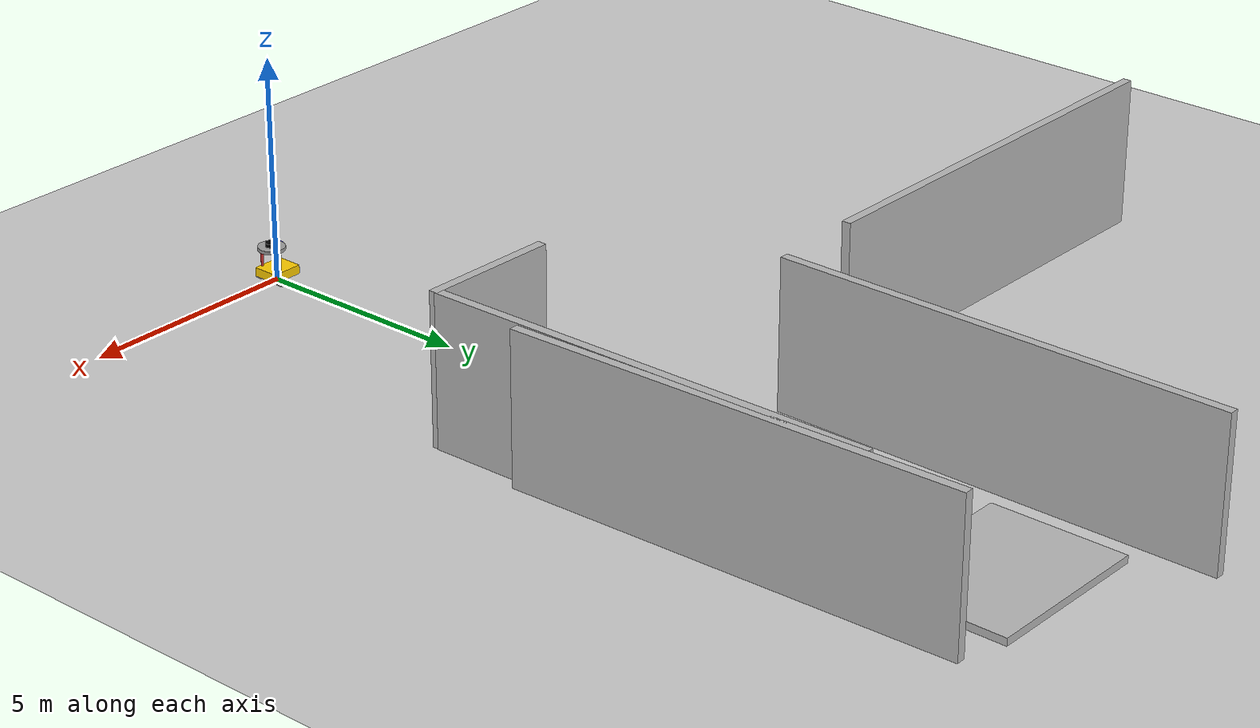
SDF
<sdf version="1.10">
 <world name="empty">
  <physics name="1ms" type="ignored">
   <max_step_size>0.001</max_step_size>
   <real_time_factor>1</real_time_factor>
   <real_time_update_rate>1000</real_time_update_rate>
  </physics>
  <plugin name="gz::sim::systems::Physics" filename="gz-sim-physics-system"/>
  <plugin name="gz::sim::systems::UserCommands" filename="gz-sim-user-commands-system"/>
  <plugin name="gz::sim::systems::SceneBroadcaster" filename="gz-sim-scene-broadcaster-system"/>
  <plugin name="gz::sim::systems::Contact" filename="gz-sim-contact-system"/>
  <plugin name="gz::sim::systems::Sensors" filename="gz-sim-sensors-system">
   <render_engine>ogre2</render_engine>
  </plugin>
  <plugin name="gz::sim::systems::DepthCamera" filename="gz-sim-depth-camera-system">
   <render_engine>ogre2</render_engine>
  </plugin>
  <plugin name="gz::sim::systems::Laser" filename="gz-sim-laser-system">
   <render_engine>ogre2</render_engine>
  </plugin>
  <gravity>0 0 -9.8000000000000007</gravity>
  <magnetic_field>5.5644999999999998e-06 2.2875799999999999e-05 -4.2388400000000002e-05</magnetic_field>
  <atmosphere type="adiabatic"/>
  <scene>
   <ambient>0.400000006 0.400000006 0.400000006 1</ambient>
   <background>0.699999988 0.699999988 0.699999988 1</background>
   <shadows>true</shadows>
  </scene>
  <model name="ground_plane">
   <static>true</static>
   <link name="link">
    <collision name="collision">
     <geometry><plane><normal>0 0 1</normal><size>1000 1000</size></plane></geometry>
    </collision>
    <visual name="visual">
     <geometry><plane><normal>0 0 1</normal><size>1000 1000</size></plane></geometry>
     <material>
      <ambient>0.800000012 0.800000012 0.800000012 1</ambient>
      <diffuse>0.800000012 0.800000012 0.800000012 1</diffuse>
      <specular>0.800000012 0.800000012 0.800000012 1</specular>
     </material>
    </visual>
    <inertial>
     <mass>1</mass>
     <inertia><ixx>1</ixx><ixy>0</ixy><ixz>0</ixz><iyy>1</iyy><iyz>0</iyz><izz>1</izz></inertia>
    </inertial>
   </link>
  </model>
  <model name="cutout_wall">
   <static>true</static>
   <link name="link">
    <pose>0 0 1.3999999999999999 0 0 0</pose>
    <collision name="collision">
     <geometry><box><size>10 0.20000000000000001 3.7999999999999998</size></box></geometry>
     <surface>
      <contact>
       <collide_without_contact>true</collide_without_contact>
       <collide_without_contact_bitmask>2</collide_without_contact_bitmask>
      </contact>
     </surface>
    </collision>
    <visual name="visual">
     <cast_shadows>false</cast_shadows>
     <geometry><box><size>10 0.20000000000000001 3.7999999999999998</size></box></geometry>
     <material>
      <script>
       <uri>https://fuel.gazebosim.org/1.0/openrobotics/models/cutout wall/2/files/materials/scripts</uri>
       <uri>https://fuel.gazebosim.org/1.0/openrobotics/models/cutout wall/2/files/materials/textures</uri>
       <name>drc_practice/cutout_wall</name>
      </script>
     </material>
    </visual>
    <sensor name="mud_contact" type="contact">
     <always_on>true</always_on>
     <update_rate>1000</update_rate>
     <contact><collision>collision</collision><topic>__default_topic__</topic></contact>
    </sensor>
    <inertial>
     <mass>1</mass>
     <inertia><ixx>1</ixx><ixy>0</ixy><ixz>0</ixz><iyy>1</iyy><iyz>0</iyz><izz>1</izz></inertia>
    </inertial>
   </link>
   <plugin name="gazebo_mud" filename="libMudPlugin.so">
    <contact_sensor_name>link/mud_contact</contact_sensor_name>
    <stiffness>0.0</stiffness>
    <damping>40.0</damping>
    <contact_surface_bitmask>2</contact_surface_bitmask>
    <link_name>drill::link</link_name>
   </plugin>
   <pose>-9.2975502014160156 11.742899894714355 0 0 0 0</pose>
  </model>
  <model name="cutout_wall_0">
   <static>true</static>
   <link name="link">
    <pose>0 0 1.3999999999999999 0 0 0</pose>
    <collision name="collision">
     <geometry><box><size>10 0.20000000000000001 3.7999999999999998</size></box></geometry>
     <surface>
      <contact>
       <collide_without_contact>true</collide_without_contact>
       <collide_without_contact_bitmask>2</collide_without_contact_bitmask>
      </contact>
     </surface>
    </collision>
    <visual name="visual">
     <cast_shadows>false</cast_shadows>
     <geometry><box><size>10 0.20000000000000001 3.7999999999999998</size></box></geometry>
     <material>
      <script>
       <uri>https://fuel.gazebosim.org/1.0/openrobotics/models/cutout wall/2/files/materials/scripts</uri>
       <uri>https://fuel.gazebosim.org/1.0/openrobotics/models/cutout wall/2/files/materials/textures</uri>
       <name>drc_practice/cutout_wall</name>
      </script>
     </material>
    </visual>
    <sensor name="mud_contact" type="contact">
     <always_on>true</always_on>
     <update_rate>1000</update_rate>
     <contact><collision>collision</collision><topic>__default_topic__</topic></contact>
    </sensor>
    <inertial>
     <mass>1</mass>
     <inertia><ixx>1</ixx><ixy>0</ixy><ixz>0</ixz><iyy>1</iyy><iyz>0</iyz><izz>1</izz></inertia>
    </inertial>
   </link>
   <plugin name="gazebo_mud" filename="libMudPlugin.so">
    <contact_sensor_name>link/mud_contact</contact_sensor_name>
    <stiffness>0.0</stiffness>
    <damping>40.0</damping>
    <contact_surface_bitmask>2</contact_surface_bitmask>
    <link_name>drill::link</link_name>
   </plugin>
   <pose>-2.2789399623870845 16.789699554443363 0 0 0 1.5732398842073381</pose>
  </model>
  <model name="cutout_wall_2">
   <static>true</static>
   <link name="link">
    <pose>0 0 1.3999999999999999 0 0 0</pose>
    <collision name="collision">
     <geometry><box><size>3 0.20000000000000001 3.7999999999999998</size></box></geometry>
     <surface>
      <contact>
       <collide_without_contact>true</collide_without_contact>
       <collide_without_contact_bitmask>2</collide_without_contact_bitmask>
      </contact>
     </surface>
    </collision>
    <visual name="visual">
     <cast_shadows>false</cast_shadows>
     <geometry><box><size>3 0.20000000000000001 3.7999999999999998</size></box></geometry>
     <material>
      <script>
       <uri>https://fuel.gazebosim.org/1.0/openrobotics/models/cutout wall/2/files/materials/scripts</uri>
       <uri>https://fuel.gazebosim.org/1.0/openrobotics/models/cutout wall/2/files/materials/textures</uri>
       <name>drc_practice/cutout_wall</name>
      </script>
     </material>
    </visual>
    <sensor name="mud_contact" type="contact">
     <always_on>true</always_on>
     <update_rate>1000</update_rate>
     <contact><collision>collision</collision><topic>__default_topic__</topic></contact>
    </sensor>
    <inertial>
     <mass>1</mass>
     <inertia><ixx>1</ixx><ixy>0</ixy><ixz>0</ixz><iyy>1</iyy><iyz>0</iyz><izz>1</izz></inertia>
    </inertial>
   </link>
   <plugin name="gazebo_mud" filename="libMudPlugin.so">
    <contact_sensor_name>link/mud_contact</contact_sensor_name>
    <stiffness>0.0</stiffness>
    <damping>40.0</damping>
    <contact_surface_bitmask>2</contact_surface_bitmask>
    <link_name>drill::link</link_name>
   </plugin>
   <pose>1.8272086381912231 7.8512516021728516 -3.5527100789104751e-15 0 0 3.1219199998554981</pose>
  </model>
  <model name="cutout_wall_1">
   <static>true</static>
   <link name="link">
    <pose>0 0 1.3999999999999999 0 0 0</pose>
    <collision name="collision">
     <geometry><box><size>3 0.20000000000000001 3.7999999999999998</size></box></geometry>
     <surface>
      <contact>
       <collide_without_contact>true</collide_without_contact>
       <collide_without_contact_bitmask>2</collide_without_contact_bitmask>
      </contact>
     </surface>
    </collision>
    <visual name="visual">
     <cast_shadows>false</cast_shadows>
     <geometry><box><size>3 0.20000000000000001 3.7999999999999998</size></box></geometry>
     <material>
      <script>
       <uri>https://fuel.gazebosim.org/1.0/openrobotics/models/cutout wall/2/files/materials/scripts</uri>
       <uri>https://fuel.gazebosim.org/1.0/openrobotics/models/cutout wall/2/files/materials/textures</uri>
       <name>drc_practice/cutout_wall</name>
      </script>
     </material>
    </visual>
    <sensor name="mud_contact" type="contact">
     <always_on>true</always_on>
     <update_rate>1000</update_rate>
     <contact><collision>collision</collision><topic>__default_topic__</topic></contact>
    </sensor>
    <inertial>
     <mass>1</mass>
     <inertia><ixx>1</ixx><ixy>0</ixy><ixz>0</ixz><iyy>1</iyy><iyz>0</iyz><izz>1</izz></inertia>
    </inertial>
   </link>
   <plugin name="gazebo_mud" filename="libMudPlugin.so">
    <contact_sensor_name>link/mud_contact</contact_sensor_name>
    <stiffness>0.0</stiffness>
    <damping>40.0</damping>
    <contact_surface_bitmask>2</contact_surface_bitmask>
    <link_name>drill::link</link_name>
   </plugin>
   <pose>-1.1117299795150752 18.781200408935547 0.039741601794957497 1.5708000198512597 0.0009258342437911516 1.5740100338723955</pose>
  </model>
  <model name="Robo_car">
   <link name="base_footprint">
    <inertial>
     <pose>-0.022432432432432429 0 0.1271621621621622 0 0 0</pose>
     <mass>6.6599999999999993</mass>
     <inertia>
      <ixx>0.19880886486486479</ixx>
      <ixy>-5.2939559203393771e-23</ixy>
      <ixz>-0.046124027027027031</ixz>
      <iyy>0.24938145945945939</iyy>
      <iyz>0</iyz>
      <izz>0.1986725945945946</izz>
     </inertia>
    </inertial>
    <collision name="base_footprint_fixed_joint_lump__base_link_collision">
     <pose>0 0 0.20000000000000001 0 0 0</pose>
     <geometry><box><size>0.69999999999999996 0.59999999999999998 0.20000000000000001</size></box></geometry>
    </collision>
    <collision name="base_footprint_fixed_joint_lump__pillar_1_link_collision_1">
     <pose>0.17499999999999999 0.27000000000000002 0.5 0 0 0</pose>
     <geometry>
      <cylinder><length>0.46000000000000002</length><radius>0.029999999999999999</radius></cylinder>
     </geometry>
    </collision>
    <collision name="base_footprint_fixed_joint_lump__pillar_2_link_collision_2">
     <pose>0.17499999999999999 -0.27000000000000002 0.5 0 0 0</pose>
     <geometry>
      <cylinder><length>0.46000000000000002</length><radius>0.029999999999999999</radius></cylinder>
     </geometry>
    </collision>
    <collision name="base_footprint_fixed_joint_lump__roof_link_collision_3">
     <pose>0.14000000000000001 0 0.78000000000000003 0 0 0</pose>
     <geometry><box><size>0.34000000000000002 0.34000000000000002 0.16</size></box></geometry>
    </collision>
    <collision name="base_footprint_fixed_joint_lump__LIDAR_link_collision_4">
     <pose>0.14000000000000001 0 0.8650000000000001 0 0 0.080000000000000002</pose>
     <geometry><box><size>0.26000000000000001 0.26000000000000001 0.16</size></box></geometry>
    </collision>
    <collision name="base_footprint_fixed_joint_lump__camera_link_collision_5">
     <pose>-0.16 0 0.78000000000000003 0 0 3.1400000000000001</pose>
     <geometry><box><size>0.040000000000000001 0.080000000000000002 0.080000000000000002</size></box></geometry>
    </collision>
    <collision name="base_footprint_fixed_joint_lump__castor_wheel_collision_6">
     <pose>-0.23999999999999999 0 0.050000000000000003 0 0 0</pose>
     <geometry><sphere><radius>0.050000000000000003</radius></sphere></geometry>
     <surface><friction><ode><mu>0.10000000000000001</mu><mu2>0.10000000000000001</mu2></ode></friction></surface>
    </collision>
    <collision name="base_footprint_fixed_joint_lump__depth_camera_link_collision_7">
     <pose>-0.34999999999999998 0 0.20000000000000001 0 0 3.1400000000000001</pose>
     <geometry><box><size>0.040000000000000001 0.080000000000000002 0.080000000000000002</size></box></geometry>
    </collision>
    <visual name="base_footprint_fixed_joint_lump__base_link_visual">
     <pose>0 0 0.20000000000000001 0 0 0</pose>
     <geometry><box><size>0.69999999999999996 0.59999999999999998 0.20000000000000001</size></box></geometry>
     <material><diffuse>1 0.808750033 0 1</diffuse><ambient>1 0.808750033 0 1</ambient></material>
    </visual>
    <visual name="base_footprint_fixed_joint_lump__pillar_1_link_visual_1">
     <pose>0.17499999999999999 0.27000000000000002 0.5 0 0 0</pose>
     <geometry>
      <cylinder><length>0.46000000000000002</length><radius>0.029999999999999999</radius></cylinder>
     </geometry>
     <material>
      <diffuse>0.808750033 0.206250012 0.206250012 1</diffuse>
      <ambient>0.808750033 0.206250012 0.206250012 1</ambient>
     </material>
    </visual>
    <visual name="base_footprint_fixed_joint_lump__pillar_2_link_visual_2">
     <pose>0.17499999999999999 -0.27000000000000002 0.5 0 0 0</pose>
     <geometry><cylinder><length>0.5</length><radius>0.029999999999999999</radius></cylinder></geometry>
     <material>
      <diffuse>0.808750033 0.206250012 0.206250012 1</diffuse>
      <ambient>0.808750033 0.206250012 0.206250012 1</ambient>
     </material>
    </visual>
    <visual name="base_footprint_fixed_joint_lump__roof_link_visual_3">
     <pose>0.14000000000000001 0 0.78000000000000003 0 0 0</pose>
     <geometry>
      <cylinder><length>0.080000000000000002</length><radius>0.29999999999999999</radius></cylinder>
     </geometry>
     <material><diffuse>0.625 0.625 0.625 1</diffuse><ambient>0.625 0.625 0.625 1</ambient></material>
    </visual>
    <visual name="base_footprint_fixed_joint_lump__LIDAR_link_visual_4">
     <pose>0.14000000000000001 0 0.8650000000000001 0 0 0.080000000000000002</pose>
     <geometry><cylinder><length>0.080000000000000002</length><radius>0.13</radius></cylinder></geometry>
     <material><diffuse>0 0 0 1</diffuse><ambient>0 0 0 1</ambient></material>
    </visual>
    <visual name="base_footprint_fixed_joint_lump__camera_link_visual_5">
     <pose>-0.16 0 0.78000000000000003 0 0 3.1400000000000001</pose>
     <geometry><box><size>0.02 0.080000000000000002 0.080000000000000002</size></box></geometry>
     <material><diffuse>0 0 1 1</diffuse><ambient>0 0 1 1</ambient></material>
    </visual>
    <visual name="base_footprint_fixed_joint_lump__castor_wheel_visual_6">
     <pose>-0.23999999999999999 0 0.050000000000000003 0 0 0</pose>
     <geometry><sphere><radius>0.050000000000000003</radius></sphere></geometry>
     <material><diffuse>0 0 0 1</diffuse><ambient>0 0 0 1</ambient></material>
    </visual>
    <visual name="base_footprint_fixed_joint_lump__depth_camera_link_visual_7">
     <pose>-0.34999999999999998 0 0.20000000000000001 0 0 3.1400000000000001</pose>
     <geometry><box><size>0.029999999999999999 0.12 0.080000000000000002</size></box></geometry>
     <material><diffuse>0 0 1 1</diffuse><ambient>0 0 1 1</ambient></material>
    </visual>
    <sensor name="gpu_lidar" type="gpu_lidar">
     <pose>0.14000000000000001 0 0.8650000000000001 0 0 0</pose>
     <topic>scan</topic>
     <update_rate>5</update_rate>
     <enable_metrics>false</enable_metrics>
     <lidar>
      <scan>
       <horizontal>
        <samples>360</samples>
        <resolution>1</resolution>
        <min_angle>-3.1400000000000001</min_angle>
        <max_angle>3.1400000000000001</max_angle>
       </horizontal>
       <vertical>
        <samples>1</samples>
        <min_angle>0</min_angle>
        <max_angle>0</max_angle>
        <resolution>1</resolution>
       </vertical>
      </scan>
      <range><min>0.5</min><max>12</max><resolution>0.050000000000000003</resolution></range>
      <noise><type>gaussian</type><mean>0</mean><stddev>0.001</stddev></noise>
      <visibility_mask>4294967295</visibility_mask>
     </lidar>
    </sensor>
    <sensor name="camera" type="camera">
     <pose>-0.16 0 0.78000000000000003 0 0 3.1400000000000001</pose>
     <topic>image</topic>
     <update_rate>5</update_rate>
     <enable_metrics>false</enable_metrics>
     <camera name="__default__">
      <pose>0 0 0 0 0 3.1400000000000001</pose>
      <horizontal_fov>0.75</horizontal_fov>
      <image><width>640</width><height>480</height><format>RGB_INT8</format><anti_aliasing>4</anti_aliasing></image>
      <camera_info_topic>camera_info</camera_info_topic>
      <triggered>false</triggered>
      <clip><near>0.20000000000000001</near><far>20</far></clip>
      <save enabled="true"><path>/tmp/cam</path></save>
      <visibility_mask>4294967295</visibility_mask>
      <noise><type>gaussian</type><mean>0</mean><stddev>0</stddev></noise>
      <distortion>
       <k1>0.10000000000000001</k1>
       <k2>0.20000000000000001</k2>
       <k3>0.29999999999999999</k3>
       <p1>0.40000000000000002</p1>
       <p2>0.5</p2>
       <center>0.20000000000000001 0.40000000000000002</center>
      </distortion>
      <lens>
       <type>custom</type>
       <scale_to_hfov>false</scale_to_hfov>
       <cutoff_angle>0.75049999999999994</cutoff_angle>
       <env_texture_size>128</env_texture_size>
       <custom_function>
        <fun>sin</fun>
        <c1>1.1000000000000001</c1>
        <c2>2.2000000000000002</c2>
        <c3>3.2999999999999998</c3>
        <f>1.2</f>
       </custom_function>
       <intrinsics><fx>280</fx><fy>281</fy><cx>320</cx><cy>240</cy><s>0</s></intrinsics>
       <projection><p_fx>282</p_fx><p_fy>283</p_fy><p_cx>320</p_cx><p_cy>240</p_cy><tx>0</tx><ty>0</ty></projection>
      </lens>
      <optical_frame_id>camera_link_optical</optical_frame_id>
     </camera>
    </sensor>
    <sensor name="imu_sensor" type="imu">
     <pose>0 0 0.10000000000000001 0 0 0</pose>
     <topic>imu</topic>
     <update_rate>5</update_rate>
     <enable_metrics>false</enable_metrics>
     <imu>
      <orientation_reference_frame>
       <localization>CUSTOM</localization>
       <custom_rpy>0 0 0</custom_rpy>
       <grav_dir_x>1 0 0</grav_dir_x>
      </orientation_reference_frame>
      <angular_velocity>
       <x>
        <noise type="none">
         <mean>0</mean>
         <stddev>0</stddev>
         <bias_mean>0</bias_mean>
         <bias_stddev>0</bias_stddev>
         <dynamic_bias_stddev>0</dynamic_bias_stddev>
         <dynamic_bias_correlation_time>0</dynamic_bias_correlation_time>
         <precision>0</precision>
        </noise>
       </x>
       <y>
        <noise type="none">
         <mean>0</mean>
         <stddev>0</stddev>
         <bias_mean>0</bias_mean>
         <bias_stddev>0</bias_stddev>
         <dynamic_bias_stddev>0</dynamic_bias_stddev>
         <dynamic_bias_correlation_time>0</dynamic_bias_correlation_time>
         <precision>0</precision>
        </noise>
       </y>
       <z>
        <noise type="none">
         <mean>0</mean>
         <stddev>0</stddev>
         <bias_mean>0</bias_mean>
         <bias_stddev>0</bias_stddev>
         <dynamic_bias_stddev>0</dynamic_bias_stddev>
         <dynamic_bias_correlation_time>0</dynamic_bias_correlation_time>
         <precision>0</precision>
        </noise>
       </z>
      </angular_velocity>
      <linear_acceleration>
       <x>
        <noise type="none">
         <mean>0</mean>
         <stddev>0</stddev>
         <bias_mean>0</bias_mean>
         <bias_stddev>0</bias_stddev>
         <dynamic_bias_stddev>0</dynamic_bias_stddev>
         <dynamic_bias_correlation_time>0</dynamic_bias_correlation_time>
         <precision>0</precision>
        </noise>
       </x>
       <y>
        <noise type="none">
         <mean>0</mean>
         <stddev>0</stddev>
         <bias_mean>0</bias_mean>
         <bias_stddev>0</bias_stddev>
         <dynamic_bias_stddev>0</dynamic_bias_stddev>
         <dynamic_bias_correlation_time>0</dynamic_bias_correlation_time>
         <precision>0</precision>
        </noise>
       </y>
       <z>
        <noise type="none">
         <mean>0</mean>
         <stddev>0</stddev>
         <bias_mean>0</bias_mean>
         <bias_stddev>0</bias_stddev>
         <dynamic_bias_stddev>0</dynamic_bias_stddev>
         <dynamic_bias_correlation_time>0</dynamic_bias_correlation_time>
         <precision>0</precision>
        </noise>
       </z>
      </linear_acceleration>
      <enable_orientation>true</enable_orientation>
     </imu>
    </sensor>
   </link>
   <joint name="left_wheel_joint" type="revolute">
    <pose>0 -1.3877787807814457e-17 5.5511151231257827e-17 0 0 0</pose>
    <parent>base_footprint</parent>
    <child>left_wheel_link</child>
    <axis>
     <xyz>0 0 1</xyz>
     <limit>
      <lower>-inf</lower>
      <upper>inf</upper>
      <effort>inf</effort>
      <velocity>inf</velocity>
      <stiffness>100000000</stiffness>
      <dissipation>1</dissipation>
     </limit>
     <dynamics>
      <spring_reference>0</spring_reference>
      <spring_stiffness>0</spring_stiffness>
      <damping>0</damping>
      <friction>0</friction>
     </dynamics>
    </axis>
   </joint>
   <link name="left_wheel_link">
    <pose>0.19999987374835621 0.31000000000048206 0.10000055535401962 1.5699999999951912 -1.2621260985999028e-06 -2.9718636971358018e-13</pose>
    <inertial>
     <mass>1</mass>
     <inertia>
      <ixx>0.0083000000000000001</ixx>
      <ixy>0</ixy>
      <ixz>0</ixz>
      <iyy>0.0083000000000000001</iyy>
      <iyz>0</iyz>
      <izz>0.00125</izz>
     </inertia>
    </inertial>
    <collision name="left_wheel_link_collision">
     <geometry>
      <cylinder><length>0.10000000000000001</length><radius>0.10000000000000001</radius></cylinder>
     </geometry>
    </collision>
    <visual name="left_wheel_link_visual">
     <geometry>
      <cylinder><length>0.10000000000000001</length><radius>0.10000000000000001</radius></cylinder>
     </geometry>
     <material><diffuse>0 0 0 1</diffuse><ambient>0 0 0 1</ambient></material>
    </visual>
   </link>
   <joint name="right_wheel_joint" type="revolute">
    <pose>0 -2.7755575615628914e-17 -5.5511151231257827e-17 0 0 0</pose>
    <parent>base_footprint</parent>
    <child>right_wheel_link</child>
    <axis>
     <xyz>0 0 1</xyz>
     <limit>
      <lower>-inf</lower>
      <upper>inf</upper>
      <effort>inf</effort>
      <velocity>inf</velocity>
      <stiffness>100000000</stiffness>
      <dissipation>1</dissipation>
     </limit>
     <dynamics>
      <spring_reference>0</spring_reference>
      <spring_stiffness>0</spring_stiffness>
      <damping>0</damping>
      <friction>0</friction>
     </dynamics>
    </axis>
   </joint>
   <link name="right_wheel_link">
    <pose>0.19999987374836276 -0.30999999999951788 0.10000055535700074 1.5699999999951912 -1.2621263371635793e-06 -2.9699640446982901e-13</pose>
    <inertial>
     <mass>1</mass>
     <inertia>
      <ixx>0.0083000000000000001</ixx>
      <ixy>0</ixy>
      <ixz>0</ixz>
      <iyy>0.0083000000000000001</iyy>
      <iyz>0</iyz>
      <izz>0.00125</izz>
     </inertia>
    </inertial>
    <collision name="right_wheel_link_collision">
     <geometry>
      <cylinder><length>0.10000000000000001</length><radius>0.10000000000000001</radius></cylinder>
     </geometry>
    </collision>
    <visual name="right_wheel_link_visual">
     <geometry>
      <cylinder><length>0.10000000000000001</length><radius>0.10000000000000001</radius></cylinder>
     </geometry>
     <material><diffuse>0 0 0 1</diffuse><ambient>0 0 0 1</ambient></material>
    </visual>
   </link>
   <plugin name="gz::sim::systems::DiffDrive" filename="gz-sim-diff-drive-system">
    <left_joint>right_wheel_joint</left_joint>
    <right_joint>left_wheel_joint</right_joint>
    <wheel_separation>0.3</wheel_separation>
    <wheel_radius>0.05</wheel_radius>
    <frame_id>odom</frame_id>
    <child_frame_id>base_footprint</child_frame_id>
   </plugin>
   <plugin name="gz::sim::systems::JointStatePublisher" filename="gz-sim-joint-state-publisher-system">
    <joint_name>left_wheel_joint</joint_name>
    <joint_name>right_wheel_joint</joint_name>
   </plugin>
   <plugin name="gz::sim::systems::PosePublisher" filename="gz-sim-pose-publisher-system">
    <publish_sensor_pose>true</publish_sensor_pose>
    <static_publisher>true</static_publisher>
    <use_pose_vector_msg>true</use_pose_vector_msg>
   </plugin>
   <frame name="pillar_1_joint" attached_to="top_of_box">
    <pose>0.17499999999999999 0.27000000000000002 0 0 0 0</pose>
   </frame>
   <frame name="pillar_1_link" attached_to="pillar_1_joint"/>
   <frame name="pillar_2_joint" attached_to="top_of_box">
    <pose>0.17499999999999999 -0.27000000000000002 0 0 0 0</pose>
   </frame>
   <frame name="pillar_2_link" attached_to="pillar_2_joint"/>
   <frame name="LIDAR_joint" attached_to="roof_link"><pose>0 0 0.16500000000000001 0 0 0</pose></frame>
   <frame name="LIDAR_link" attached_to="LIDAR_joint"/>
   <frame name="camera_optical_joint" attached_to="camera_link">
    <pose>0 0 0 -1.5707963267948959 -5.5511151231257827e-17 -1.5707963267948959</pose>
   </frame>
   <frame name="camera_link_optical" attached_to="camera_optical_joint"/>
   <frame name="camera_joint" attached_to="roof_link">
    <pose>-0.29999999999999999 0 0.080000000000000002 0 0 3.1400000000000001</pose>
   </frame>
   <frame name="camera_link" attached_to="camera_joint"/>
   <frame name="roof_joint" attached_to="top_of_box">
    <pose>0.14000000000000001 0 0.40000000000000002 0 0 0</pose>
   </frame>
   <frame name="roof_link" attached_to="roof_joint"/>
   <frame name="base_TopOfBox_joint" attached_to="base_link"><pose>0 0 0.20000000000000001 0 0 0</pose></frame>
   <frame name="top_of_box" attached_to="base_TopOfBox_joint"/>
   <frame name="base_imu_joint" attached_to="base_link"/>
   <frame name="imu_link" attached_to="base_imu_joint"/>
   <frame name="castor_base_joint" attached_to="base_link">
    <pose>-0.23999999999999999 0 -0.050000000000000003 0 0 0</pose>
   </frame>
   <frame name="castor_wheel" attached_to="castor_base_joint"/>
   <frame name="depth_camera_joint" attached_to="base_link">
    <pose>-0.34999999999999998 0 0.10000000000000001 0 0 3.1400000000000001</pose>
   </frame>
   <frame name="depth_camera_link" attached_to="depth_camera_joint"/>
   <frame name="baseLink_footPrint_joint" attached_to="base_footprint">
    <pose>0 0 0.10000000000000001 0 0 0</pose>
   </frame>
   <frame name="base_link" attached_to="baseLink_footPrint_joint"/>
   <pose>-1.0086292070088016e-09 -3.0154679042548057e-12 2.1326916127515001e-05 -3.3820500811641122e-10 -8.8906881217366336e-05 3.8349773555271676e-11</pose>
   <static>false</static>
  </model>
  <model name="cutout_wall_3">
   <static>true</static>
   <link name="link">
    <pose>0 0 1.3999999999999999 0 0 0</pose>
    <collision name="collision">
     <geometry><box><size>10 0.20000000000000001 3.7999999999999998</size></box></geometry>
     <surface>
      <contact>
       <collide_without_contact>true</collide_without_contact>
       <collide_without_contact_bitmask>2</collide_without_contact_bitmask>
      </contact>
     </surface>
    </collision>
    <visual name="visual">
     <cast_shadows>false</cast_shadows>
     <geometry><box><size>10 0.20000000000000001 3.7999999999999998</size></box></geometry>
     <material>
      <script>
       <uri>https://fuel.gazebosim.org/1.0/openrobotics/models/cutout wall/2/files/materials/scripts</uri>
       <uri>https://fuel.gazebosim.org/1.0/openrobotics/models/cutout wall/2/files/materials/textures</uri>
       <name>drc_practice/cutout_wall</name>
      </script>
     </material>
    </visual>
    <sensor name="mud_contact" type="contact">
     <always_on>true</always_on>
     <update_rate>1000</update_rate>
     <contact><collision>collision</collision><topic>__default_topic__</topic></contact>
    </sensor>
    <inertial>
     <mass>1</mass>
     <inertia><ixx>1</ixx><ixy>0</ixy><ixz>0</ixz><iyy>1</iyy><iyz>0</iyz><izz>1</izz></inertia>
    </inertial>
   </link>
   <plugin name="gazebo_mud" filename="libMudPlugin.so">
    <contact_sensor_name>link/mud_contact</contact_sensor_name>
    <stiffness>0.0</stiffness>
    <damping>40.0</damping>
    <contact_surface_bitmask>2</contact_surface_bitmask>
    <link_name>drill::link</link_name>
   </plugin>
   <pose>3.1461799144744873 12.859299659729004 0 0 0 1.589759995255418</pose>
  </model>
  <model name="cutout_wall_4">
   <static>true</static>
   <link name="link">
    <pose>0 0 1.3999999999999999 0 0 0</pose>
    <collision name="collision">
     <geometry><box><size>10 0.20000000000000001 3.7999999999999998</size></box></geometry>
     <surface>
      <contact>
       <collide_without_contact>true</collide_without_contact>
       <collide_without_contact_bitmask>2</collide_without_contact_bitmask>
      </contact>
     </surface>
    </collision>
    <visual name="visual">
     <cast_shadows>false</cast_shadows>
     <geometry><box><size>10 0.20000000000000001 3.7999999999999998</size></box></geometry>
     <material>
      <script>
       <uri>https://fuel.gazebosim.org/1.0/openrobotics/models/cutout wall/2/files/materials/scripts</uri>
       <uri>https://fuel.gazebosim.org/1.0/openrobotics/models/cutout wall/2/files/materials/textures</uri>
       <name>drc_practice/cutout_wall</name>
      </script>
     </material>
    </visual>
    <sensor name="mud_contact" type="contact">
     <always_on>true</always_on>
     <update_rate>1000</update_rate>
     <contact><collision>collision</collision><topic>__default_topic__</topic></contact>
    </sensor>
    <inertial>
     <mass>1</mass>
     <inertia><ixx>1</ixx><ixy>0</ixy><ixz>0</ixz><iyy>1</iyy><iyz>0</iyz><izz>1</izz></inertia>
    </inertial>
   </link>
   <plugin name="gazebo_mud" filename="libMudPlugin.so">
    <contact_sensor_name>link/mud_contact</contact_sensor_name>
    <stiffness>0.0</stiffness>
    <damping>40.0</damping>
    <contact_surface_bitmask>2</contact_surface_bitmask>
    <link_name>drill::link</link_name>
   </plugin>
   <pose>3.2800116539001465 14.981698036193848 -2.2204500197172533e-16 0 0 -1.5359000018761026</pose>
  </model>
  <light name="sun" type="directional">
   <pose>0 0 10 0 0 0</pose>
   <intensity>1</intensity>
   <direction>-0.5 0.10000000000000001 -0.90000000000000002</direction>
   <diffuse>0.800000012 0.800000012 0.800000012 1</diffuse>
   <specular>0.200000003 0.200000003 0.200000003 1</specular>
   <attenuation>
    <range>1000</range>
    <linear>0.0099999997764825821</linear>
    <constant>0.89999997615814209</constant>
    <quadratic>0.0010000000474974513</quadratic>
   </attenuation>
   <spot><inner_angle>0</inner_angle><outer_angle>0</outer_angle><falloff>0</falloff></spot>
  </light>
 </world>
</sdf>
